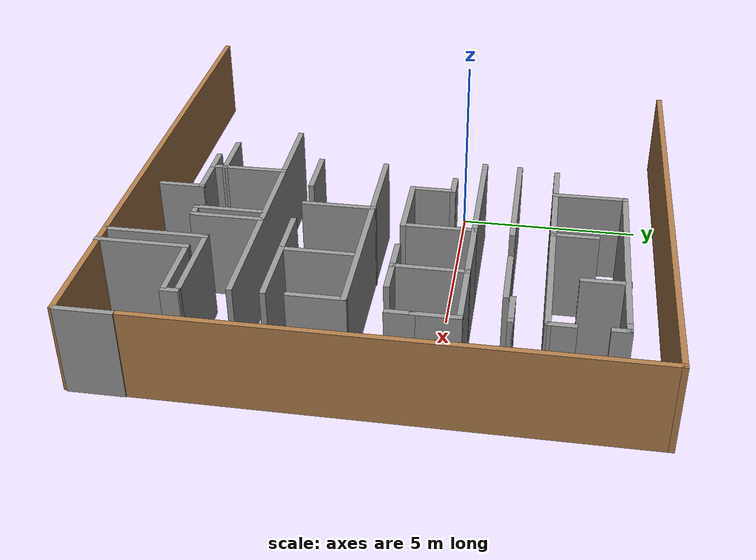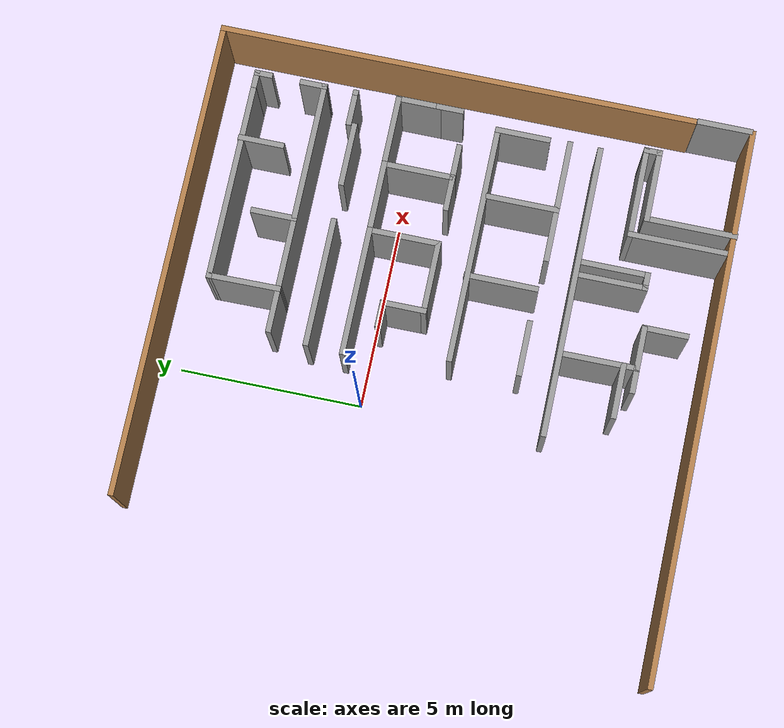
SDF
<sdf version="1.7">
 <model name="nidar1">
  <pose>1.48392 -1.60733 0 0 -0 0</pose>
  <link name="Wall_10">
   <collision name="Wall_10_Collision">
    <geometry><box><size>13 0.15 2.5</size></box></geometry>
    <pose>0 0 1.25 0 -0 0</pose>
   </collision>
   <visual name="Wall_10_Visual">
    <pose>0 0 1.25 0 -0 0</pose>
    <geometry><box><size>13 0.15 2.5</size></box></geometry>
    <material>
     <script><uri>file://media/materials/scripts/gazebo.material</uri><name>Gazebo/Wood</name></script>
     <ambient>1 1 1 1</ambient>
    </material>
    <meta><layer>0</layer></meta>
   </visual>
   <pose>1.04576 7.23235 0 0 -0 3.14159</pose>
  </link>
  <link name="Wall_106">
   <collision name="Wall_106_Collision">
    <geometry><box><size>3.5 0.15 2.5</size></box></geometry>
    <pose>0 0 1.25 0 -0 0</pose>
   </collision>
   <visual name="Wall_106_Visual">
    <pose>0 0 1.25 0 -0 0</pose>
    <geometry><box><size>3.5 0.15 2.5</size></box></geometry>
    <material>
     <script><uri>file://media/materials/scripts/gazebo.material</uri><name>Gazebo/Grey</name></script>
     <ambient>1 1 1 1</ambient>
    </material>
    <meta><layer>0</layer></meta>
   </visual>
   <pose>1.15003 3.19392 0 0 -0 0</pose>
  </link>
  <link name="Wall_108">
   <collision name="Wall_108_Collision">
    <geometry><box><size>1.75 0.15 2.5</size></box></geometry>
    <pose>0 0 1.25 0 -0 0</pose>
   </collision>
   <visual name="Wall_108_Visual">
    <pose>0 0 1.25 0 -0 0</pose>
    <geometry><box><size>1.75 0.15 2.5</size></box></geometry>
    <material>
     <script><uri>file://media/materials/scripts/gazebo.material</uri><name>Gazebo/Grey</name></script>
     <ambient>1 1 1 1</ambient>
    </material>
    <meta><layer>0</layer></meta>
   </visual>
   <pose>4.70001 3.21403 0 0 -0 0</pose>
  </link>
  <link name="Wall_110">
   <collision name="Wall_110_Collision">
    <geometry><box><size>3.5 0.15 2.5</size></box></geometry>
    <pose>0 0 1.25 0 -0 0</pose>
   </collision>
   <visual name="Wall_110_Visual">
    <pose>0 0 1.25 0 -0 0</pose>
    <geometry><box><size>3.5 0.15 2.5</size></box></geometry>
    <material>
     <script><uri>file://media/materials/scripts/gazebo.material</uri><name>Gazebo/Grey</name></script>
     <ambient>1 1 1 1</ambient>
    </material>
    <meta><layer>0</layer></meta>
   </visual>
   <pose>1.11152 2.21403 0 0 -0 0</pose>
  </link>
  <link name="Wall_111">
   <collision name="Wall_111_Collision">
    <geometry><box><size>2 0.15 2.5</size></box></geometry>
    <pose>0 0 1.25 0 -0 0</pose>
   </collision>
   <visual name="Wall_111_Visual">
    <pose>0 0 1.25 0 -0 0</pose>
    <geometry><box><size>2 0.15 2.5</size></box></geometry>
    <material>
     <script><uri>file://media/materials/scripts/gazebo.material</uri><name>Gazebo/Grey</name></script>
     <ambient>1 1 1 1</ambient>
    </material>
    <meta><layer>0</layer></meta>
   </visual>
   <pose>2.78652 1.28903 0 0 -0 -1.5708</pose>
  </link>
  <link name="Wall_112">
   <collision name="Wall_112_Collision">
    <geometry><box><size>2 0.15 2.5</size></box></geometry>
    <pose>0 0 1.25 0 -0 0</pose>
   </collision>
   <visual name="Wall_112_Visual">
    <pose>0 0 1.25 0 -0 0</pose>
    <geometry><box><size>2 0.15 2.5</size></box></geometry>
    <material>
     <script><uri>file://media/materials/scripts/gazebo.material</uri><name>Gazebo/Grey</name></script>
     <ambient>1 1 1 1</ambient>
    </material>
    <meta><layer>0</layer></meta>
   </visual>
   <pose>1.86152 0.364029 0 0 -0 3.14159</pose>
  </link>
  <link name="Wall_113">
   <collision name="Wall_113_Collision">
    <geometry><box><size>1.25 0.15 2.5</size></box></geometry>
    <pose>0 0 1.25 0 -0 0</pose>
   </collision>
   <visual name="Wall_113_Visual">
    <pose>0 0 1.25 0 -0 0</pose>
    <geometry><box><size>1.25 0.15 2.5</size></box></geometry>
    <material>
     <script><uri>file://media/materials/scripts/gazebo.material</uri><name>Gazebo/Grey</name></script>
     <ambient>1 1 1 1</ambient>
    </material>
    <meta><layer>0</layer></meta>
   </visual>
   <pose>0.936522 0.914029 0 0 -0 1.5708</pose>
  </link>
  <link name="Wall_114">
   <collision name="Wall_114_Collision">
    <geometry><box><size>0.75 0.15 2.5</size></box></geometry>
    <pose>0 0 1.25 0 -0 0</pose>
   </collision>
   <visual name="Wall_114_Visual">
    <pose>0 0 1.25 0 -0 0</pose>
    <geometry><box><size>0.75 0.15 2.5</size></box></geometry>
    <material>
     <script><uri>file://media/materials/scripts/gazebo.material</uri><name>Gazebo/Grey</name></script>
     <ambient>1 1 1 1</ambient>
    </material>
    <meta><layer>0</layer></meta>
   </visual>
   <pose>0.636522 1.46403 0 0 -0 3.14159</pose>
  </link>
  <link name="Wall_126">
   <collision name="Wall_126_Collision">
    <geometry><box><size>6.5 0.15 2.5</size></box></geometry>
    <pose>0 0 1.25 0 -0 0</pose>
   </collision>
   <visual name="Wall_126_Visual">
    <pose>0 0 1.25 0 -0 0</pose>
    <geometry><box><size>6.5 0.15 2.5</size></box></geometry>
    <material>
     <script><uri>file://media/materials/scripts/gazebo.material</uri><name>Gazebo/Grey</name></script>
     <ambient>1 1 1 1</ambient>
    </material>
    <meta><layer>0</layer></meta>
   </visual>
   <pose>2.99651 -0.553664 0 0 -0 0</pose>
  </link>
  <link name="Wall_127">
   <collision name="Wall_127_Collision">
    <geometry><box><size>1.5 0.15 2.5</size></box></geometry>
    <pose>0 0 1.25 0 -0 0</pose>
   </collision>
   <visual name="Wall_127_Visual">
    <pose>0 0 1.25 0 -0 0</pose>
    <geometry><box><size>1.5 0.15 2.5</size></box></geometry>
    <material>
     <script><uri>file://media/materials/scripts/gazebo.material</uri><name>Gazebo/Grey</name></script>
     <ambient>1 1 1 1</ambient>
    </material>
    <meta><layer>0</layer></meta>
   </visual>
   <pose>6.17151 -1.22866 0 0 -0 -1.5708</pose>
  </link>
  <link name="Wall_131">
   <collision name="Wall_131_Collision">
    <geometry><box><size>2 0.15 2.5</size></box></geometry>
    <pose>0 0 1.25 0 -0 0</pose>
   </collision>
   <visual name="Wall_131_Visual">
    <pose>0 0 1.25 0 -0 0</pose>
    <geometry><box><size>2 0.15 2.5</size></box></geometry>
    <material>
     <script><uri>file://media/materials/scripts/gazebo.material</uri><name>Gazebo/Grey</name></script>
     <ambient>1 1 1 1</ambient>
    </material>
    <meta><layer>0</layer></meta>
   </visual>
   <pose>5.24651 -2.50366 0 0 -0 3.14159</pose>
  </link>
  <link name="Wall_133">
   <collision name="Wall_133_Collision">
    <geometry><box><size>2 0.15 2.5</size></box></geometry>
    <pose>0 0 1.25 0 -0 0</pose>
   </collision>
   <visual name="Wall_133_Visual">
    <pose>0 0 1.25 0 -0 0</pose>
    <geometry><box><size>2 0.15 2.5</size></box></geometry>
    <material>
     <script><uri>file://media/materials/scripts/gazebo.material</uri><name>Gazebo/Grey</name></script>
     <ambient>1 1 1 1</ambient>
    </material>
    <meta><layer>0</layer></meta>
   </visual>
   <pose>4.32151 -1.57866 0 0 -0 1.5708</pose>
  </link>
  <link name="Wall_137">
   <collision name="Wall_137_Collision">
    <geometry><box><size>7.927 0.15 2.5</size></box></geometry>
    <pose>0 0 1.25 0 -0 0</pose>
   </collision>
   <visual name="Wall_137_Visual">
    <pose>0 0 1.25 0 -0 0</pose>
    <geometry><box><size>7.927 0.15 2.5</size></box></geometry>
    <material>
     <script><uri>file://media/materials/scripts/gazebo.material</uri><name>Gazebo/Grey</name></script>
     <ambient>1 1 1 1</ambient>
    </material>
    <meta><layer>0</layer></meta>
   </visual>
   <pose>2.27248 -3.32839 0 0 -0 -3.14034</pose>
  </link>
  <link name="Wall_143">
   <collision name="Wall_143_Collision">
    <geometry><box><size>2 0.15 2.5</size></box></geometry>
    <pose>0 0 1.25 0 -0 0</pose>
   </collision>
   <visual name="Wall_143_Visual">
    <pose>0 0 1.25 0 -0 0</pose>
    <geometry><box><size>2 0.15 2.5</size></box></geometry>
    <material>
     <script><uri>file://media/materials/scripts/gazebo.material</uri><name>Gazebo/Grey</name></script>
     <ambient>1 1 1 1</ambient>
    </material>
    <meta><layer>0</layer></meta>
   </visual>
   <pose>3.71152 2.21403 0 0 -0 0</pose>
  </link>
  <link name="Wall_144">
   <collision name="Wall_144_Collision">
    <geometry><box><size>2 0.15 2.5</size></box></geometry>
    <pose>0 0 1.25 0 -0 0</pose>
   </collision>
   <visual name="Wall_144_Visual">
    <pose>0 0 1.25 0 -0 0</pose>
    <geometry><box><size>2 0.15 2.5</size></box></geometry>
    <material>
     <script><uri>file://media/materials/scripts/gazebo.material</uri><name>Gazebo/Grey</name></script>
     <ambient>1 1 1 1</ambient>
    </material>
    <meta><layer>0</layer></meta>
   </visual>
   <pose>4.63652 1.28903 0 0 -0 -1.5708</pose>
  </link>
  <link name="Wall_145">
   <collision name="Wall_145_Collision">
    <geometry><box><size>1 0.15 2.5</size></box></geometry>
    <pose>0 0 1.25 0 -0 0</pose>
   </collision>
   <visual name="Wall_145_Visual">
    <pose>0 0 1.25 0 -0 0</pose>
    <geometry><box><size>1 0.15 2.5</size></box></geometry>
    <material>
     <script><uri>file://media/materials/scripts/gazebo.material</uri><name>Gazebo/Grey</name></script>
     <ambient>1 1 1 1</ambient>
    </material>
    <meta><layer>0</layer></meta>
   </visual>
   <pose>4.21152 0.364029 0 0 -0 3.14159</pose>
  </link>
  <link name="Wall_147">
   <collision name="Wall_147_Collision">
    <geometry><box><size>2 0.15 2.5</size></box></geometry>
    <pose>0 0 1.25 0 -0 0</pose>
   </collision>
   <visual name="Wall_147_Visual">
    <pose>0 0 1.25 0 -0 0</pose>
    <geometry><box><size>2 0.15 2.5</size></box></geometry>
    <material>
     <script><uri>file://media/materials/scripts/gazebo.material</uri><name>Gazebo/Grey</name></script>
     <ambient>1 1 1 1</ambient>
    </material>
    <meta><layer>0</layer></meta>
   </visual>
   <pose>5.56152 2.21403 0 0 -0 0</pose>
  </link>
  <link name="Wall_148">
   <collision name="Wall_148_Collision">
    <geometry><box><size>1.25 0.15 2.5</size></box></geometry>
    <pose>0 0 1.25 0 -0 0</pose>
   </collision>
   <visual name="Wall_148_Visual">
    <pose>0 0 1.25 0 -0 0</pose>
    <geometry><box><size>1.25 0.15 2.5</size></box></geometry>
    <material>
     <script><uri>file://media/materials/scripts/gazebo.material</uri><name>Gazebo/Grey</name></script>
     <ambient>1 1 1 1</ambient>
    </material>
    <meta><layer>0</layer></meta>
   </visual>
   <pose>6.48652 1.66403 0 0 -0 -1.5708</pose>
  </link>
  <link name="Wall_150">
   <collision name="Wall_150_Collision">
    <geometry><box><size>1 0.15 2.5</size></box></geometry>
    <pose>0 0 1.25 0 -0 0</pose>
   </collision>
   <visual name="Wall_150_Visual">
    <pose>0 0 1.25 0 -0 0</pose>
    <geometry><box><size>1 0.15 2.5</size></box></geometry>
    <material>
     <script><uri>file://media/materials/scripts/gazebo.material</uri><name>Gazebo/Grey</name></script>
     <ambient>1 1 1 1</ambient>
    </material>
    <meta><layer>0</layer></meta>
   </visual>
   <pose>5.06152 0.364029 0 0 -0 0</pose>
  </link>
  <link name="Wall_152">
   <collision name="Wall_152_Collision">
    <geometry><box><size>0.75 0.15 2.5</size></box></geometry>
    <pose>0 0 1.25 0 -0 0</pose>
   </collision>
   <visual name="Wall_152_Visual">
    <pose>0 0 1.25 0 -0 0</pose>
    <geometry><box><size>0.75 0.15 2.5</size></box></geometry>
    <material>
     <script><uri>file://media/materials/scripts/gazebo.material</uri><name>Gazebo/Grey</name></script>
     <ambient>1 1 1 1</ambient>
    </material>
    <meta><layer>0</layer></meta>
   </visual>
   <pose>6.48652 0.814029 0 0 -0 -1.5708</pose>
  </link>
  <link name="Wall_154">
   <collision name="Wall_154_Collision">
    <geometry><box><size>1.5 0.15 2.5</size></box></geometry>
    <pose>0 0 1.25 0 -0 0</pose>
   </collision>
   <visual name="Wall_154_Visual">
    <pose>0 0 1.25 0 -0 0</pose>
    <geometry><box><size>1.5 0.15 2.5</size></box></geometry>
    <material>
     <script><uri>file://media/materials/scripts/gazebo.material</uri><name>Gazebo/Grey</name></script>
     <ambient>1 1 1 1</ambient>
    </material>
    <meta><layer>0</layer></meta>
   </visual>
   <pose>0.496513 -2.40366 0 0 -0 0</pose>
  </link>
  <link name="Wall_156">
   <collision name="Wall_156_Collision">
    <geometry><box><size>1.5 0.15 2.5</size></box></geometry>
    <pose>0 0 1.25 0 -0 0</pose>
   </collision>
   <visual name="Wall_156_Visual">
    <pose>0 0 1.25 0 -0 0</pose>
    <geometry><box><size>1.5 0.15 2.5</size></box></geometry>
    <material>
     <script><uri>file://media/materials/scripts/gazebo.material</uri><name>Gazebo/Grey</name></script>
     <ambient>1 1 1 1</ambient>
    </material>
    <meta><layer>0</layer></meta>
   </visual>
   <pose>3.64651 -2.50366 0 0 -0 3.14159</pose>
  </link>
  <link name="Wall_159">
   <collision name="Wall_159_Collision">
    <geometry><box><size>2 0.15 2.5</size></box></geometry>
    <pose>0 0 1.25 0 -0 0</pose>
   </collision>
   <visual name="Wall_159_Visual">
    <pose>0 0 1.25 0 -0 0</pose>
    <geometry><box><size>2 0.15 2.5</size></box></geometry>
    <material>
     <script><uri>file://media/materials/scripts/gazebo.material</uri><name>Gazebo/Grey</name></script>
     <ambient>1 1 1 1</ambient>
    </material>
    <meta><layer>0</layer></meta>
   </visual>
   <pose>2.11079 -1.45942 0 0 -0 -1.5708</pose>
  </link>
  <link name="Wall_170">
   <collision name="Wall_170_Collision">
    <geometry><box><size>1.5 0.15 2.5</size></box></geometry>
    <pose>0 0 1.25 0 -0 0</pose>
   </collision>
   <visual name="Wall_170_Visual">
    <pose>0 0 1.25 0 -0 0</pose>
    <geometry><box><size>1.5 0.15 2.5</size></box></geometry>
    <material>
     <script><uri>file://media/materials/scripts/gazebo.material</uri><name>Gazebo/Grey</name></script>
     <ambient>1 1 1 1</ambient>
    </material>
    <meta><layer>0</layer></meta>
   </visual>
   <pose>-0.112026 -5.0147 0 0 -0 0</pose>
  </link>
  <link name="Wall_171">
   <collision name="Wall_171_Collision">
    <geometry><box><size>1.82725 0.15 2.5</size></box></geometry>
    <pose>0 0 1.25 0 -0 0</pose>
   </collision>
   <visual name="Wall_171_Visual">
    <pose>0 0 1.25 0 -0 0</pose>
    <geometry><box><size>1.82725 0.15 2.5</size></box></geometry>
    <material>
     <script><uri>file://media/materials/scripts/gazebo.material</uri><name>Gazebo/Grey</name></script>
     <ambient>1 1 1 1</ambient>
    </material>
    <meta><layer>0</layer></meta>
   </visual>
   <pose>0.55803 -4.1761 0 0 -0 1.57669</pose>
  </link>
  <link name="Wall_184">
   <collision name="Wall_184_Collision">
    <geometry><box><size>2.5 0.15 2.5</size></box></geometry>
    <pose>0 0 1.25 0 -0 0</pose>
   </collision>
   <visual name="Wall_184_Visual">
    <pose>0 0 1.25 0 -0 0</pose>
    <geometry><box><size>2.5 0.15 2.5</size></box></geometry>
    <material>
     <script><uri>file://media/materials/scripts/gazebo.material</uri><name>Gazebo/Grey</name></script>
     <ambient>1 1 1 1</ambient>
    </material>
    <meta><layer>0</layer></meta>
   </visual>
   <pose>4.57238 -6.05735 0 0 -0 1.5708</pose>
  </link>
  <link name="Wall_185">
   <collision name="Wall_185_Collision">
    <geometry><box><size>2 0.15 2.5</size></box></geometry>
    <pose>0 0 1.25 0 -0 0</pose>
   </collision>
   <visual name="Wall_185_Visual">
    <pose>0 0 1.25 0 -0 0</pose>
    <geometry><box><size>2 0.15 2.5</size></box></geometry>
    <material>
     <script><uri>file://media/materials/scripts/gazebo.material</uri><name>Gazebo/Grey</name></script>
     <ambient>1 1 1 1</ambient>
    </material>
    <meta><layer>0</layer></meta>
   </visual>
   <pose>5.49738 -4.88235 0 0 -0 0</pose>
  </link>
  <link name="Wall_189">
   <collision name="Wall_189_Collision">
    <geometry><box><size>0.5 0.15 2.5</size></box></geometry>
    <pose>0 0 1.25 0 -0 0</pose>
   </collision>
   <visual name="Wall_189_Visual">
    <pose>0 0 1.25 0 -0 0</pose>
    <geometry><box><size>0.5 0.15 2.5</size></box></geometry>
    <material>
     <script><uri>file://media/materials/scripts/gazebo.material</uri><name>Gazebo/Grey</name></script>
     <ambient>1 1 1 1</ambient>
    </material>
    <meta><layer>0</layer></meta>
   </visual>
   <pose>6.42238 -4.70735 0 0 -0 1.5708</pose>
  </link>
  <link name="Wall_190">
   <collision name="Wall_190_Collision">
    <geometry><box><size>2.5 0.15 2.5</size></box></geometry>
    <pose>0 0 1.25 0 -0 0</pose>
   </collision>
   <visual name="Wall_190_Visual">
    <pose>0 0 1.25 0 -0 0</pose>
    <geometry><box><size>2.5 0.15 2.5</size></box></geometry>
    <material>
     <script><uri>file://media/materials/scripts/gazebo.material</uri><name>Gazebo/Grey</name></script>
     <ambient>1 1 1 1</ambient>
    </material>
    <meta><layer>0</layer></meta>
   </visual>
   <pose>5.24738 -4.53235 0 0 -0 3.14159</pose>
  </link>
  <link name="Wall_191">
   <collision name="Wall_191_Collision">
    <geometry><box><size>2.75 0.15 2.5</size></box></geometry>
    <pose>0 0 1.25 0 -0 0</pose>
   </collision>
   <visual name="Wall_191_Visual">
    <pose>0 0 1.25 0 -0 0</pose>
    <geometry><box><size>2.75 0.15 2.5</size></box></geometry>
    <material>
     <script><uri>file://media/materials/scripts/gazebo.material</uri><name>Gazebo/Grey</name></script>
     <ambient>1 1 1 1</ambient>
    </material>
    <meta><layer>0</layer></meta>
   </visual>
   <pose>4.07238 -5.83235 0 0 -0 -1.5708</pose>
  </link>
  <link name="Wall_193">
   <collision name="Wall_193_Collision">
    <geometry><box><size>2 0.15 2.5</size></box></geometry>
    <pose>0 0 1.25 0 -0 0</pose>
   </collision>
   <visual name="Wall_193_Visual">
    <pose>0 0 1.25 0 -0 0</pose>
    <geometry><box><size>2 0.15 2.5</size></box></geometry>
    <material>
     <script><uri>file://media/materials/scripts/gazebo.material</uri><name>Gazebo/Grey</name></script>
     <ambient>1 1 1 1</ambient>
    </material>
    <meta><layer>0</layer></meta>
   </visual>
   <pose>2.71844 -4.25707 0 0 -0 -1.5708</pose>
  </link>
  <link name="Wall_194">
   <collision name="Wall_194_Collision">
    <geometry><box><size>0.5 0.15 2.5</size></box></geometry>
    <pose>0 0 1.25 0 -0 0</pose>
   </collision>
   <visual name="Wall_194_Visual">
    <pose>0 0 1.25 0 -0 0</pose>
    <geometry><box><size>0.5 0.15 2.5</size></box></geometry>
    <material>
     <script><uri>file://media/materials/scripts/gazebo.material</uri><name>Gazebo/Grey</name></script>
     <ambient>1 1 1 1</ambient>
    </material>
    <meta><layer>0</layer></meta>
   </visual>
   <pose>2.89344 -5.18207 0 0 -0 0</pose>
  </link>
  <link name="Wall_195">
   <collision name="Wall_195_Collision">
    <geometry><box><size>2 0.15 2.5</size></box></geometry>
    <pose>0 0 1.25 0 -0 0</pose>
   </collision>
   <visual name="Wall_195_Visual">
    <pose>0 0 1.25 0 -0 0</pose>
    <geometry><box><size>2 0.15 2.5</size></box></geometry>
    <material>
     <script><uri>file://media/materials/scripts/gazebo.material</uri><name>Gazebo/Grey</name></script>
     <ambient>1 1 1 1</ambient>
    </material>
    <meta><layer>0</layer></meta>
   </visual>
   <pose>3.06844 -4.25707 0 0 -0 1.5708</pose>
  </link>
  <link name="Wall_197">
   <collision name="Wall_197_Collision">
    <geometry><box><size>0.5 0.15 2.5</size></box></geometry>
    <pose>0 0 1.25 0 -0 0</pose>
   </collision>
   <visual name="Wall_197_Visual">
    <pose>0 0 1.25 0 -0 0</pose>
    <geometry><box><size>0.5 0.15 2.5</size></box></geometry>
    <material>
     <script><uri>file://media/materials/scripts/gazebo.material</uri><name>Gazebo/Grey</name></script>
     <ambient>1 1 1 1</ambient>
    </material>
    <meta><layer>0</layer></meta>
   </visual>
   <pose>0.562974 -5.1897 0 0 -0 -1.5708</pose>
  </link>
  <link name="Wall_198">
   <collision name="Wall_198_Collision">
    <geometry><box><size>1.25 0.15 2.5</size></box></geometry>
    <pose>0 0 1.25 0 -0 0</pose>
   </collision>
   <visual name="Wall_198_Visual">
    <pose>0 0 1.25 0 -0 0</pose>
    <geometry><box><size>1.25 0.15 2.5</size></box></geometry>
    <material>
     <script><uri>file://media/materials/scripts/gazebo.material</uri><name>Gazebo/Grey</name></script>
     <ambient>1 1 1 1</ambient>
    </material>
    <meta><layer>0</layer></meta>
   </visual>
   <pose>1.11297 -5.3647 0 0 -0 0</pose>
  </link>
  <link name="Wall_199">
   <collision name="Wall_199_Collision">
    <geometry><box><size>1.25 0.15 2.5</size></box></geometry>
    <pose>0 0 1.25 0 -0 0</pose>
   </collision>
   <visual name="Wall_199_Visual">
    <pose>0 0 1.25 0 -0 0</pose>
    <geometry><box><size>1.25 0.15 2.5</size></box></geometry>
    <material>
     <script><uri>file://media/materials/scripts/gazebo.material</uri><name>Gazebo/Grey</name></script>
     <ambient>1 1 1 1</ambient>
    </material>
    <meta><layer>0</layer></meta>
   </visual>
   <pose>1.66297 -5.9147 0 0 -0 -1.5708</pose>
  </link>
  <link name="Wall_205">
   <collision name="Wall_205_Collision">
    <geometry><box><size>0.75 0.15 2.5</size></box></geometry>
    <pose>0 0 1.25 0 -0 0</pose>
   </collision>
   <visual name="Wall_205_Visual">
    <pose>0 0 1.25 0 -0 0</pose>
    <geometry><box><size>0.75 0.15 2.5</size></box></geometry>
    <material>
     <script><uri>file://media/materials/scripts/gazebo.material</uri><name>Gazebo/Grey</name></script>
     <ambient>1 1 1 1</ambient>
    </material>
    <meta><layer>0</layer></meta>
   </visual>
   <pose>0.262974 -5.3647 0 0 -0 3.14159</pose>
  </link>
  <link name="Wall_29">
   <collision name="Wall_29_Collision">
    <geometry><box><size>1.27011 0.15 2.5</size></box></geometry>
    <pose>0 0 1.25 0 -0 0</pose>
   </collision>
   <visual name="Wall_29_Visual">
    <pose>0 0 1.25 0 -0 0</pose>
    <geometry><box><size>1.27011 0.15 2.5</size></box></geometry>
    <material>
     <script><uri>file://media/materials/scripts/gazebo.material</uri><name>Gazebo/Grey</name></script>
     <ambient>1 1 1 1</ambient>
    </material>
    <meta><layer>0</layer></meta>
   </visual>
   <pose>0.183942 4.22509 0 0 -0 0</pose>
  </link>
  <link name="Wall_30">
   <collision name="Wall_30_Collision">
    <geometry><box><size>2.00011 0.15 2.5</size></box></geometry>
    <pose>0 0 1.25 0 -0 0</pose>
   </collision>
   <visual name="Wall_30_Visual">
    <pose>0 0 1.25 0 -0 0</pose>
    <geometry><box><size>2.00011 0.15 2.5</size></box></geometry>
    <material>
     <script><uri>file://media/materials/scripts/gazebo.material</uri><name>Gazebo/Grey</name></script>
     <ambient>1 1 1 1</ambient>
    </material>
    <meta><layer>0</layer></meta>
   </visual>
   <pose>0.733942 5.15009 0 0 -0 1.58167</pose>
  </link>
  <link name="Wall_31">
   <collision name="Wall_31_Collision">
    <geometry><box><size>5.5 0.15 2.5</size></box></geometry>
    <pose>0 0 1.25 0 -0 0</pose>
   </collision>
   <visual name="Wall_31_Visual">
    <pose>0 0 1.25 0 -0 0</pose>
    <geometry><box><size>5.5 0.15 2.5</size></box></geometry>
    <material>
     <script><uri>file://media/materials/scripts/gazebo.material</uri><name>Gazebo/Grey</name></script>
     <ambient>1 1 1 1</ambient>
    </material>
    <meta><layer>0</layer></meta>
   </visual>
   <pose>3.39888 6.07509 0 0 -0 0</pose>
  </link>
  <link name="Wall_32">
   <collision name="Wall_32_Collision">
    <geometry><box><size>0.5 0.15 2.5</size></box></geometry>
    <pose>0 0 1.25 0 -0 0</pose>
   </collision>
   <visual name="Wall_32_Visual">
    <pose>0 0 1.25 0 -0 0</pose>
    <geometry><box><size>0.5 0.15 2.5</size></box></geometry>
    <material>
     <script><uri>file://media/materials/scripts/gazebo.material</uri><name>Gazebo/Grey</name></script>
     <ambient>1 1 1 1</ambient>
    </material>
    <meta><layer>0</layer></meta>
   </visual>
   <pose>6.24888 6.07509 0 0 -0 0</pose>
  </link>
  <link name="Wall_33">
   <collision name="Wall_33_Collision">
    <geometry><box><size>0.5 0.15 2.5</size></box></geometry>
    <pose>0 0 1.25 0 -0 0</pose>
   </collision>
   <visual name="Wall_33_Visual">
    <pose>0 0 1.25 0 -0 0</pose>
    <geometry><box><size>0.5 0.15 2.5</size></box></geometry>
    <material>
     <script><uri>file://media/materials/scripts/gazebo.material</uri><name>Gazebo/Grey</name></script>
     <ambient>1 1 1 1</ambient>
    </material>
    <meta><layer>0</layer></meta>
   </visual>
   <pose>6.42389 5.90009 0 0 -0 -1.5708</pose>
  </link>
  <link name="Wall_35">
   <collision name="Wall_35_Collision">
    <geometry><box><size>5.80131 0.15 2.5</size></box></geometry>
    <pose>0 0 1.25 0 -0 0</pose>
   </collision>
   <visual name="Wall_35_Visual">
    <pose>0 0 1.25 0 -0 0</pose>
    <geometry><box><size>5.80131 0.15 2.5</size></box></geometry>
    <material>
     <script><uri>file://media/materials/scripts/gazebo.material</uri><name>Gazebo/Grey</name></script>
     <ambient>1 1 1 1</ambient>
    </material>
    <meta><layer>0</layer></meta>
   </visual>
   <pose>3.58977 4.22509 0 0 -0 0</pose>
  </link>
  <link name="Wall_36">
   <collision name="Wall_36_Collision">
    <geometry><box><size>0.75 0.15 2.5</size></box></geometry>
    <pose>0 0 1.25 0 -0 0</pose>
   </collision>
   <visual name="Wall_36_Visual">
    <pose>0 0 1.25 0 -0 0</pose>
    <geometry><box><size>0.75 0.15 2.5</size></box></geometry>
    <material>
     <script><uri>file://media/materials/scripts/gazebo.material</uri><name>Gazebo/Grey</name></script>
     <ambient>1 1 1 1</ambient>
    </material>
    <meta><layer>0</layer></meta>
   </visual>
   <pose>6.4153 4.52509 0 0 -0 1.57119</pose>
  </link>
  <link name="Wall_4">
   <collision name="Wall_4_Collision">
    <geometry><box><size>15 0.15 2.5</size></box></geometry>
    <pose>0 0 1.25 0 -0 0</pose>
   </collision>
   <visual name="Wall_4_Visual">
    <pose>0 0 1.25 0 -0 0</pose>
    <geometry><box><size>15 0.15 2.5</size></box></geometry>
    <material>
     <script><uri>file://media/materials/scripts/gazebo.material</uri><name>Gazebo/Wood</name></script>
     <ambient>1 1 1 1</ambient>
    </material>
    <meta><layer>0</layer></meta>
   </visual>
   <pose>0.031617 -7.21201 0 0 -0 0</pose>
  </link>
  <link name="Wall_45">
   <collision name="Wall_45_Collision">
    <geometry><box><size>0.15 0.15 2.5</size></box></geometry>
    <pose>0 0 1.25 0 -0 0</pose>
   </collision>
   <visual name="Wall_45_Visual">
    <pose>0 0 1.25 0 -0 0</pose>
    <geometry><box><size>0.15 0.15 2.5</size></box></geometry>
    <material>
     <script><uri>file://media/materials/scripts/gazebo.material</uri><name>Gazebo/Grey</name></script>
     <ambient>1 1 1 1</ambient>
    </material>
    <meta><layer>0</layer></meta>
   </visual>
   <pose>6.41542 3.37509 0 0 -0 0</pose>
  </link>
  <link name="Wall_56">
   <collision name="Wall_56_Collision">
    <geometry><box><size>1.25 0.15 2.5</size></box></geometry>
    <pose>0 0 1.25 0 -0 0</pose>
   </collision>
   <visual name="Wall_56_Visual">
    <pose>0 0 1.25 0 -0 0</pose>
    <geometry><box><size>1.25 0.15 2.5</size></box></geometry>
    <material>
     <script><uri>file://media/materials/scripts/gazebo.material</uri><name>Gazebo/Grey</name></script>
     <ambient>1 1 1 1</ambient>
    </material>
    <meta><layer>0</layer></meta>
   </visual>
   <pose>4.57677 5.54563 0 0 -0 -1.5708</pose>
  </link>
  <link name="Wall_60">
   <collision name="Wall_60_Collision">
    <geometry><box><size>1.25 0.15 2.5</size></box></geometry>
    <pose>0 0 1.25 0 -0 0</pose>
   </collision>
   <visual name="Wall_60_Visual">
    <pose>0 0 1.25 0 -0 0</pose>
    <geometry><box><size>1.25 0.15 2.5</size></box></geometry>
    <material>
     <script><uri>file://media/materials/scripts/gazebo.material</uri><name>Gazebo/Grey</name></script>
     <ambient>1 1 1 1</ambient>
    </material>
    <meta><layer>0</layer></meta>
   </visual>
   <pose>2.68677 4.77564 0 0 -0 1.5708</pose>
  </link>
  <link name="Wall_9">
   <collision name="Wall_9_Collision">
    <geometry><box><size>13 0.15 2.5</size></box></geometry>
    <pose>0 0 1.25 0 -0 0</pose>
   </collision>
   <visual name="Wall_9_Visual">
    <pose>0 0 1.25 0 -0 0</pose>
    <geometry><box><size>13 0.15 2.5</size></box></geometry>
    <material>
     <script><uri>file://media/materials/scripts/gazebo.material</uri><name>Gazebo/Wood</name></script>
     <ambient>1 1 1 1</ambient>
    </material>
    <meta><layer>0</layer></meta>
   </visual>
   <pose>7.47076 0.80735 0 0 -0 1.5708</pose>
  </link>
  <link name="Wall_94">
   <collision name="Wall_94_Collision">
    <geometry><box><size>1 0.15 2.5</size></box></geometry>
    <pose>0 0 1.25 0 -0 0</pose>
   </collision>
   <visual name="Wall_94_Visual">
    <pose>0 0 1.25 0 -0 0</pose>
    <geometry><box><size>1 0.15 2.5</size></box></geometry>
    <material>
     <script><uri>file://media/materials/scripts/gazebo.material</uri><name>Gazebo/Grey</name></script>
     <ambient>1 1 1 1</ambient>
    </material>
    <meta><layer>0</layer></meta>
   </visual>
   <pose>5.99042 3.37509 0 0 -0 3.14159</pose>
  </link>
  <pose>-0.346211 0.278962 0 0 -0 0</pose>
  <link name="Wall_29">
   <collision name="Wall_29_Collision">
    <geometry><box><size>1.5 0.15 2.5</size></box></geometry>
    <pose>0 0 1.25 0 -0 0</pose>
   </collision>
   <visual name="Wall_29_Visual">
    <pose>0 0 1.25 0 -0 0</pose>
    <geometry><box><size>1.5 0.15 2.5</size></box></geometry>
    <material>
     <script><uri>file://media/materials/scripts/gazebo.material</uri><name>Gazebo/Grey</name></script>
     <ambient>1 1 1 1</ambient>
    </material>
    <meta><layer>0</layer></meta>
   </visual>
   <pose>7.4893 -6.45234 0 0 -0 -1.5708</pose>
  </link>
  <static>1</static>
 </model>
</sdf>
